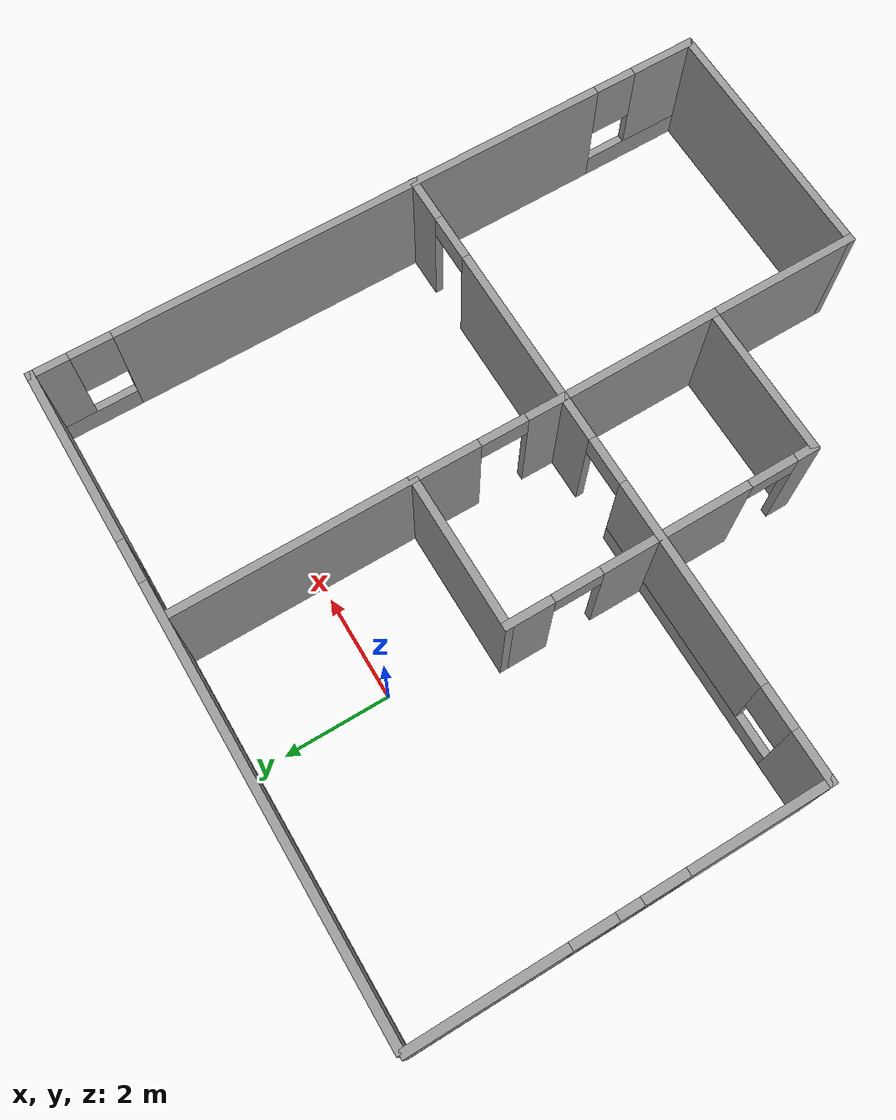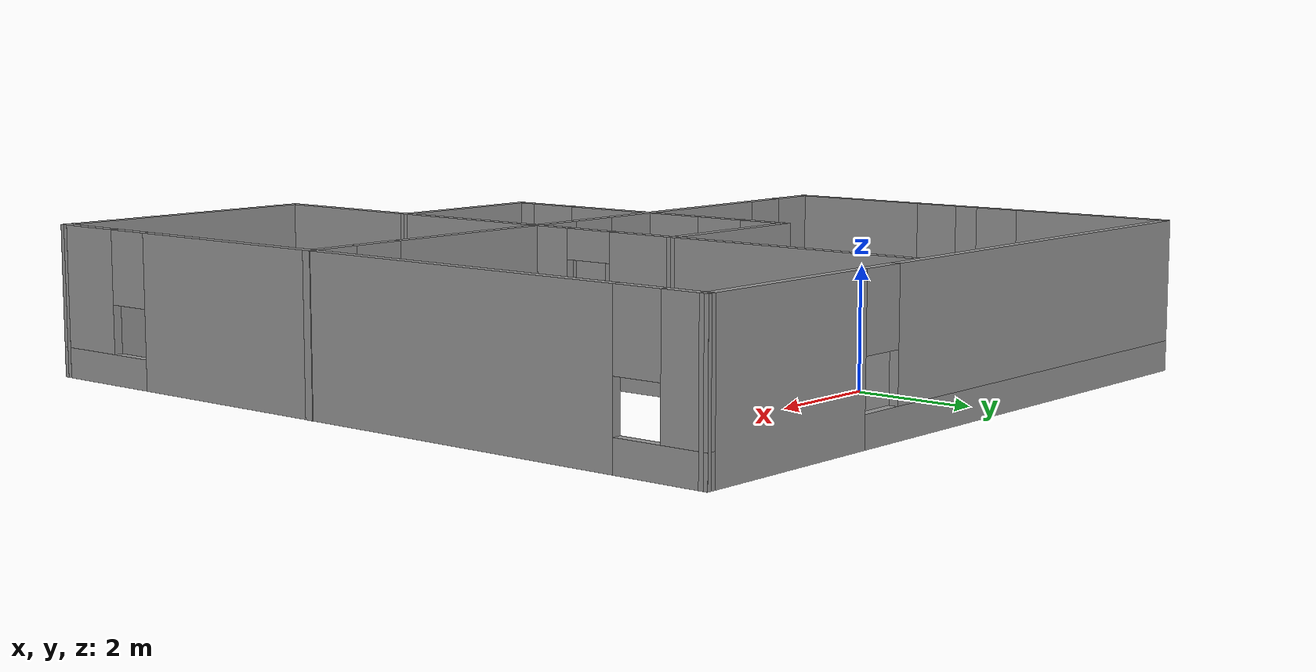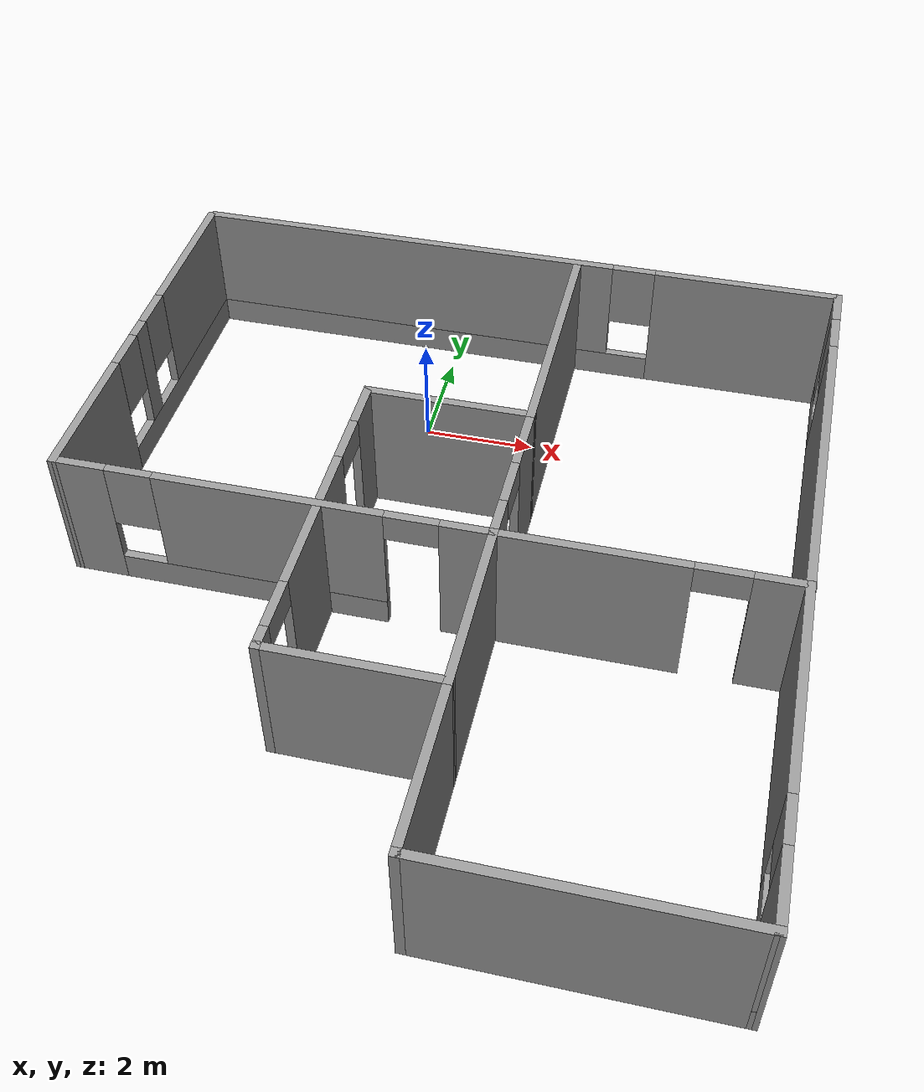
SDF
<?xml version='1.0'?>
<sdf version='1.6'>
  <model name='home'>
    <pose frame=''>1.06393 -4.00159 0 0 -0 0</pose>
    <link name='Wall_11'>
      <pose frame=''>-2.43351 -0.752008 0 0 -0 -0.000554</pose>
      <visual name='Wall_11_Visual_0'>
        <pose frame=''>-3.25375 0 1.25 0 -0 0</pose>
        <geometry>
          <box>
            <size>0.975464 0.15 2.5</size>
          </box>
        </geometry>
        <material>
          <script>
            <uri>file://media/materials/scripts/gazebo.material</uri>
            <name>Gazebo/Grey</name>
          </script>
          <ambient>1 1 1 1</ambient>
        </material>
        <meta>
          <layer>0</layer>
        </meta>
      </visual>
      <collision name='Wall_11_Collision_0'>
        <geometry>
          <box>
            <size>0.975464 0.15 2.5</size>
          </box>
        </geometry>
        <pose frame=''>-3.25375 0 1.25 0 -0 0</pose>
      </collision>
      <visual name='Wall_11_Visual_1'>
        <pose frame=''>3.27397 0 1.25 0 -0 0</pose>
        <geometry>
          <box>
            <size>0.935038 0.15 2.5</size>
          </box>
        </geometry>
        <material>
          <script>
            <uri>file://media/materials/scripts/gazebo.material</uri>
            <name>Gazebo/Grey</name>
          </script>
          <ambient>1 1 1 1</ambient>
        </material>
        <meta>
          <layer>0</layer>
        </meta>
      </visual>
      <collision name='Wall_11_Collision_1'>
        <geometry>
          <box>
            <size>0.935038 0.15 2.5</size>
          </box>
        </geometry>
        <pose frame=''>3.27397 0 1.25 0 -0 0</pose>
      </collision>
      <visual name='Wall_11_Visual_2'>
        <pose frame=''>-0.429787 0 0.25 0 -0 0</pose>
        <geometry>
          <box>
            <size>4.67247 0.15 0.5</size>
          </box>
        </geometry>
        <material>
          <script>
            <uri>file://media/materials/scripts/gazebo.material</uri>
            <name>Gazebo/Grey</name>
          </script>
          <ambient>1 1 1 1</ambient>
        </material>
        <meta>
          <layer>0</layer>
        </meta>
      </visual>
      <collision name='Wall_11_Collision_2'>
        <geometry>
          <box>
            <size>4.67247 0.15 0.5</size>
          </box>
        </geometry>
        <pose frame=''>-0.429787 0 0.25 0 -0 0</pose>
      </collision>
      <visual name='Wall_11_Visual_3'>
        <pose frame=''>-0.029787 0 1.5 0 -0 0</pose>
        <geometry>
          <box>
            <size>3.87247 0.15 2</size>
          </box>
        </geometry>
        <material>
          <script>
            <uri>file://media/materials/scripts/gazebo.material</uri>
            <name>Gazebo/Grey</name>
          </script>
          <ambient>1 1 1 1</ambient>
        </material>
        <meta>
          <layer>0</layer>
        </meta>
      </visual>
      <collision name='Wall_11_Collision_3'>
        <geometry>
          <box>
            <size>3.87247 0.15 2</size>
          </box>
        </geometry>
        <pose frame=''>-0.029787 0 1.5 0 -0 0</pose>
      </collision>
      <visual name='Wall_11_Visual_4'>
        <pose frame=''>-2.36602 0 1.9 0 -0 0</pose>
        <geometry>
          <box>
            <size>0.8 0.15 1.2</size>
          </box>
        </geometry>
        <material>
          <script>
            <uri>file://media/materials/scripts/gazebo.material</uri>
            <name>Gazebo/Grey</name>
          </script>
          <ambient>1 1 1 1</ambient>
        </material>
        <meta>
          <layer>0</layer>
        </meta>
      </visual>
      <collision name='Wall_11_Collision_4'>
        <geometry>
          <box>
            <size>0.8 0.15 1.2</size>
          </box>
        </geometry>
        <pose frame=''>-2.36602 0 1.9 0 -0 0</pose>
      </collision>
      <visual name='Wall_11_Visual_5'>
        <pose frame=''>2.35645 0 2.25 0 -0 0</pose>
        <geometry>
          <box>
            <size>0.9 0.15 0.5</size>
          </box>
        </geometry>
        <material>
          <script>
            <uri>file://media/materials/scripts/gazebo.material</uri>
            <name>Gazebo/Grey</name>
          </script>
          <ambient>1 1 1 1</ambient>
        </material>
        <meta>
          <layer>0</layer>
        </meta>
      </visual>
      <collision name='Wall_11_Collision_5'>
        <geometry>
          <box>
            <size>0.9 0.15 0.5</size>
          </box>
        </geometry>
        <pose frame=''>2.35645 0 2.25 0 -0 0</pose>
      </collision>
    </link>
    <link name='Wall_12'>
      <pose frame=''>1.24149 0.672992 0 0 -0 1.56483</pose>
      <visual name='Wall_12_Visual_0'>
        <pose frame=''>-1.10509 0 1.25 0 -0 0</pose>
        <geometry>
          <box>
            <size>0.793929 0.15 2.5</size>
          </box>
        </geometry>
        <material>
          <script>
            <uri>file://media/materials/scripts/gazebo.material</uri>
            <name>Gazebo/Grey</name>
          </script>
          <ambient>1 1 1 1</ambient>
        </material>
        <meta>
          <layer>0</layer>
        </meta>
      </visual>
      <collision name='Wall_12_Collision_0'>
        <geometry>
          <box>
            <size>0.793929 0.15 2.5</size>
          </box>
        </geometry>
        <pose frame=''>-1.10509 0 1.25 0 -0 0</pose>
      </collision>
      <visual name='Wall_12_Visual_1'>
        <pose frame=''>0.846965 0 1.25 0 -0 0</pose>
        <geometry>
          <box>
            <size>1.31018 0.15 2.5</size>
          </box>
        </geometry>
        <material>
          <script>
            <uri>file://media/materials/scripts/gazebo.material</uri>
            <name>Gazebo/Grey</name>
          </script>
          <ambient>1 1 1 1</ambient>
        </material>
        <meta>
          <layer>0</layer>
        </meta>
      </visual>
      <collision name='Wall_12_Collision_1'>
        <geometry>
          <box>
            <size>1.31018 0.15 2.5</size>
          </box>
        </geometry>
        <pose frame=''>0.846965 0 1.25 0 -0 0</pose>
      </collision>
      <visual name='Wall_12_Visual_2'>
        <pose frame=''>-0.258126 0 2.25 0 -0 0</pose>
        <geometry>
          <box>
            <size>0.9 0.15 0.5</size>
          </box>
        </geometry>
        <material>
          <script>
            <uri>file://media/materials/scripts/gazebo.material</uri>
            <name>Gazebo/Grey</name>
          </script>
          <ambient>1 1 1 1</ambient>
        </material>
        <meta>
          <layer>0</layer>
        </meta>
      </visual>
      <collision name='Wall_12_Collision_2'>
        <geometry>
          <box>
            <size>0.9 0.15 0.5</size>
          </box>
        </geometry>
        <pose frame=''>-0.258126 0 2.25 0 -0 0</pose>
      </collision>
    </link>
    <link name='Wall_13'>
      <collision name='Wall_13_Collision'>
        <geometry>
          <box>
            <size>3 0.15 2.5</size>
          </box>
        </geometry>
        <pose frame=''>0 0 1.25 0 -0 0</pose>
      </collision>
      <visual name='Wall_13_Visual'>
        <pose frame=''>0 0 1.25 0 -0 0</pose>
        <geometry>
          <box>
            <size>3 0.15 2.5</size>
          </box>
        </geometry>
        <material>
          <script>
            <uri>file://media/materials/scripts/gazebo.material</uri>
            <name>Gazebo/Grey</name>
          </script>
          <ambient>1 1 1 1</ambient>
        </material>
        <meta>
          <layer>0</layer>
        </meta>
      </visual>
      <pose frame=''>-0.174993 2.10002 0 0 -0 3.14159</pose>
    </link>
    <link name='Wall_14'>
      <pose frame=''>-1.59999 -0.824978 0 0 -0 -1.5708</pose>
      <visual name='Wall_14_Visual_0'>
        <pose frame=''>-2.54191 0 1.25 0 -0 0</pose>
        <geometry>
          <box>
            <size>0.916176 0.15 2.5</size>
          </box>
        </geometry>
        <material>
          <script>
            <uri>file://media/materials/scripts/gazebo.material</uri>
            <name>Gazebo/Grey</name>
          </script>
          <ambient>1 1 1 1</ambient>
        </material>
        <meta>
          <layer>0</layer>
        </meta>
      </visual>
      <collision name='Wall_14_Collision_0'>
        <geometry>
          <box>
            <size>0.916176 0.15 2.5</size>
          </box>
        </geometry>
        <pose frame=''>-2.54191 0 1.25 0 -0 0</pose>
      </collision>
      <visual name='Wall_14_Visual_1'>
        <pose frame=''>0.235123 0 1.25 0 -0 0</pose>
        <geometry>
          <box>
            <size>2.83789 0.15 2.5</size>
          </box>
        </geometry>
        <material>
          <script>
            <uri>file://media/materials/scripts/gazebo.material</uri>
            <name>Gazebo/Grey</name>
          </script>
          <ambient>1 1 1 1</ambient>
        </material>
        <meta>
          <layer>0</layer>
        </meta>
      </visual>
      <collision name='Wall_14_Collision_1'>
        <geometry>
          <box>
            <size>2.83789 0.15 2.5</size>
          </box>
        </geometry>
        <pose frame=''>0.235123 0 1.25 0 -0 0</pose>
      </collision>
      <visual name='Wall_14_Visual_2'>
        <pose frame=''>2.77704 0 1.25 0 -0 0</pose>
        <geometry>
          <box>
            <size>0.44593 0.15 2.5</size>
          </box>
        </geometry>
        <material>
          <script>
            <uri>file://media/materials/scripts/gazebo.material</uri>
            <name>Gazebo/Grey</name>
          </script>
          <ambient>1 1 1 1</ambient>
        </material>
        <meta>
          <layer>0</layer>
        </meta>
      </visual>
      <collision name='Wall_14_Collision_2'>
        <geometry>
          <box>
            <size>0.44593 0.15 2.5</size>
          </box>
        </geometry>
        <pose frame=''>2.77704 0 1.25 0 -0 0</pose>
      </collision>
      <visual name='Wall_14_Visual_3'>
        <pose frame=''>-1.63382 0 2.25 0 -0 0</pose>
        <geometry>
          <box>
            <size>0.9 0.15 0.5</size>
          </box>
        </geometry>
        <material>
          <script>
            <uri>file://media/materials/scripts/gazebo.material</uri>
            <name>Gazebo/Grey</name>
          </script>
          <ambient>1 1 1 1</ambient>
        </material>
        <meta>
          <layer>0</layer>
        </meta>
      </visual>
      <collision name='Wall_14_Collision_3'>
        <geometry>
          <box>
            <size>0.9 0.15 0.5</size>
          </box>
        </geometry>
        <pose frame=''>-1.63382 0 2.25 0 -0 0</pose>
      </collision>
      <visual name='Wall_14_Visual_4'>
        <pose frame=''>2.10407 0 2.25 0 -0 0</pose>
        <geometry>
          <box>
            <size>0.9 0.15 0.5</size>
          </box>
        </geometry>
        <material>
          <script>
            <uri>file://media/materials/scripts/gazebo.material</uri>
            <name>Gazebo/Grey</name>
          </script>
          <ambient>1 1 1 1</ambient>
        </material>
        <meta>
          <layer>0</layer>
        </meta>
      </visual>
      <collision name='Wall_14_Collision_4'>
        <geometry>
          <box>
            <size>0.9 0.15 0.5</size>
          </box>
        </geometry>
        <pose frame=''>2.10407 0 2.25 0 -0 0</pose>
      </collision>
    </link>
    <link name='Wall_15'>
      <collision name='Wall_15_Collision'>
        <geometry>
          <box>
            <size>3 0.15 2.5</size>
          </box>
        </geometry>
        <pose frame=''>0 0 1.25 0 -0 0</pose>
      </collision>
      <visual name='Wall_15_Visual'>
        <pose frame=''>0 0 1.25 0 -0 0</pose>
        <geometry>
          <box>
            <size>3 0.15 2.5</size>
          </box>
        </geometry>
        <material>
          <script>
            <uri>file://media/materials/scripts/gazebo.material</uri>
            <name>Gazebo/Grey</name>
          </script>
          <ambient>1 1 1 1</ambient>
        </material>
        <meta>
          <layer>0</layer>
        </meta>
      </visual>
      <pose frame=''>-0.174993 -3.74998 0 0 -0 0</pose>
    </link>
    <link name='Wall_16'>
      <collision name='Wall_16_Collision'>
        <geometry>
          <box>
            <size>3.14599 0.15 2.5</size>
          </box>
        </geometry>
        <pose frame=''>0 0 1.25 0 -0 0</pose>
      </collision>
      <visual name='Wall_16_Visual'>
        <pose frame=''>0 0 1.25 0 -0 0</pose>
        <geometry>
          <box>
            <size>3.14599 0.15 2.5</size>
          </box>
        </geometry>
        <material>
          <script>
            <uri>file://media/materials/scripts/gazebo.material</uri>
            <name>Gazebo/Grey</name>
          </script>
          <ambient>1 1 1 1</ambient>
        </material>
        <meta>
          <layer>0</layer>
        </meta>
      </visual>
      <pose frame=''>1.24149 -2.25201 0 0 -0 1.57648</pose>
    </link>
    <link name='Wall_17'>
      <pose frame=''>3.67095 -0.754038 0 0 -0 0</pose>
      <visual name='Wall_17_Visual_0'>
        <pose frame=''>-0.913368 0 1.25 0 -0 0</pose>
        <geometry>
          <box>
            <size>3.17326 0.15 2.5</size>
          </box>
        </geometry>
        <material>
          <script>
            <uri>file://media/materials/scripts/gazebo.material</uri>
            <name>Gazebo/Grey</name>
          </script>
          <ambient>1 1 1 1</ambient>
        </material>
        <meta>
          <layer>0</layer>
        </meta>
      </visual>
      <collision name='Wall_17_Collision_0'>
        <geometry>
          <box>
            <size>3.17326 0.15 2.5</size>
          </box>
        </geometry>
        <pose frame=''>-0.913368 0 1.25 0 -0 0</pose>
      </collision>
      <visual name='Wall_17_Visual_1'>
        <pose frame=''>2.03663 0 1.25 0 -0 0</pose>
        <geometry>
          <box>
            <size>0.926735 0.15 2.5</size>
          </box>
        </geometry>
        <material>
          <script>
            <uri>file://media/materials/scripts/gazebo.material</uri>
            <name>Gazebo/Grey</name>
          </script>
          <ambient>1 1 1 1</ambient>
        </material>
        <meta>
          <layer>0</layer>
        </meta>
      </visual>
      <collision name='Wall_17_Collision_1'>
        <geometry>
          <box>
            <size>0.926735 0.15 2.5</size>
          </box>
        </geometry>
        <pose frame=''>2.03663 0 1.25 0 -0 0</pose>
      </collision>
      <visual name='Wall_17_Visual_2'>
        <pose frame=''>1.12326 0 2.25 0 -0 0</pose>
        <geometry>
          <box>
            <size>0.9 0.15 0.5</size>
          </box>
        </geometry>
        <material>
          <script>
            <uri>file://media/materials/scripts/gazebo.material</uri>
            <name>Gazebo/Grey</name>
          </script>
          <ambient>1 1 1 1</ambient>
        </material>
        <meta>
          <layer>0</layer>
        </meta>
      </visual>
      <collision name='Wall_17_Collision_2'>
        <geometry>
          <box>
            <size>0.9 0.15 0.5</size>
          </box>
        </geometry>
        <pose frame=''>1.12326 0 2.25 0 -0 0</pose>
      </collision>
    </link>
    <link name='Wall_18'>
      <pose frame=''>6.09149 2.92299 0 0 -0 1.56848</pose>
      <visual name='Wall_18_Visual_0'>
        <pose frame=''>-0.782712 0 1.25 0 -0 0</pose>
        <geometry>
          <box>
            <size>5.93866 0.15 2.5</size>
          </box>
        </geometry>
        <material>
          <script>
            <uri>file://media/materials/scripts/gazebo.material</uri>
            <name>Gazebo/Grey</name>
          </script>
          <ambient>1 1 1 1</ambient>
        </material>
        <meta>
          <layer>0</layer>
        </meta>
      </visual>
      <collision name='Wall_18_Collision_0'>
        <geometry>
          <box>
            <size>5.93866 0.15 2.5</size>
          </box>
        </geometry>
        <pose frame=''>-0.782712 0 1.25 0 -0 0</pose>
      </collision>
      <visual name='Wall_18_Visual_1'>
        <pose frame=''>2.96933 0 0.25 0 -0 0</pose>
        <geometry>
          <box>
            <size>1.56542 0.15 0.5</size>
          </box>
        </geometry>
        <material>
          <script>
            <uri>file://media/materials/scripts/gazebo.material</uri>
            <name>Gazebo/Grey</name>
          </script>
          <ambient>1 1 1 1</ambient>
        </material>
        <meta>
          <layer>0</layer>
        </meta>
      </visual>
      <collision name='Wall_18_Collision_1'>
        <geometry>
          <box>
            <size>1.56542 0.15 0.5</size>
          </box>
        </geometry>
        <pose frame=''>2.96933 0 0.25 0 -0 0</pose>
      </collision>
      <visual name='Wall_18_Visual_2'>
        <pose frame=''>3.36933 0 1.5 0 -0 0</pose>
        <geometry>
          <box>
            <size>0.765424 0.15 2</size>
          </box>
        </geometry>
        <material>
          <script>
            <uri>file://media/materials/scripts/gazebo.material</uri>
            <name>Gazebo/Grey</name>
          </script>
          <ambient>1 1 1 1</ambient>
        </material>
        <meta>
          <layer>0</layer>
        </meta>
      </visual>
      <collision name='Wall_18_Collision_2'>
        <geometry>
          <box>
            <size>0.765424 0.15 2</size>
          </box>
        </geometry>
        <pose frame=''>3.36933 0 1.5 0 -0 0</pose>
      </collision>
      <visual name='Wall_18_Visual_3'>
        <pose frame=''>2.58662 0 1.9 0 -0 0</pose>
        <geometry>
          <box>
            <size>0.8 0.15 1.2</size>
          </box>
        </geometry>
        <material>
          <script>
            <uri>file://media/materials/scripts/gazebo.material</uri>
            <name>Gazebo/Grey</name>
          </script>
          <ambient>1 1 1 1</ambient>
        </material>
        <meta>
          <layer>0</layer>
        </meta>
      </visual>
      <collision name='Wall_18_Collision_3'>
        <geometry>
          <box>
            <size>0.8 0.15 1.2</size>
          </box>
        </geometry>
        <pose frame=''>2.58662 0 1.9 0 -0 0</pose>
      </collision>
    </link>
    <link name='Wall_19'>
      <pose frame=''>0.050007 6.60002 0 0 -0 3.14159</pose>
      <visual name='Wall_19_Visual_0'>
        <pose frame=''>-4.39916 0 1.25 0 -0 0</pose>
        <geometry>
          <box>
            <size>3.45169 0.15 2.5</size>
          </box>
        </geometry>
        <material>
          <script>
            <uri>file://media/materials/scripts/gazebo.material</uri>
            <name>Gazebo/Grey</name>
          </script>
          <ambient>1 1 1 1</ambient>
        </material>
        <meta>
          <layer>0</layer>
        </meta>
      </visual>
      <collision name='Wall_19_Collision_0'>
        <geometry>
          <box>
            <size>3.45169 0.15 2.5</size>
          </box>
        </geometry>
        <pose frame=''>-4.39916 0 1.25 0 -0 0</pose>
      </collision>
      <visual name='Wall_19_Visual_1'>
        <pose frame=''>1.72584 0 0.25 0 -0 0</pose>
        <geometry>
          <box>
            <size>8.79831 0.15 0.5</size>
          </box>
        </geometry>
        <material>
          <script>
            <uri>file://media/materials/scripts/gazebo.material</uri>
            <name>Gazebo/Grey</name>
          </script>
          <ambient>1 1 1 1</ambient>
        </material>
        <meta>
          <layer>0</layer>
        </meta>
      </visual>
      <collision name='Wall_19_Collision_1'>
        <geometry>
          <box>
            <size>8.79831 0.15 0.5</size>
          </box>
        </geometry>
        <pose frame=''>1.72584 0 0.25 0 -0 0</pose>
      </collision>
      <visual name='Wall_19_Visual_2'>
        <pose frame=''>2.12584 0 1.5 0 -0 0</pose>
        <geometry>
          <box>
            <size>7.99831 0.15 2</size>
          </box>
        </geometry>
        <material>
          <script>
            <uri>file://media/materials/scripts/gazebo.material</uri>
            <name>Gazebo/Grey</name>
          </script>
          <ambient>1 1 1 1</ambient>
        </material>
        <meta>
          <layer>0</layer>
        </meta>
      </visual>
      <collision name='Wall_19_Collision_2'>
        <geometry>
          <box>
            <size>7.99831 0.15 2</size>
          </box>
        </geometry>
        <pose frame=''>2.12584 0 1.5 0 -0 0</pose>
      </collision>
      <visual name='Wall_19_Visual_3'>
        <pose frame=''>-2.27331 0 1.9 0 -0 0</pose>
        <geometry>
          <box>
            <size>0.8 0.15 1.2</size>
          </box>
        </geometry>
        <material>
          <script>
            <uri>file://media/materials/scripts/gazebo.material</uri>
            <name>Gazebo/Grey</name>
          </script>
          <ambient>1 1 1 1</ambient>
        </material>
        <meta>
          <layer>0</layer>
        </meta>
      </visual>
      <collision name='Wall_19_Collision_3'>
        <geometry>
          <box>
            <size>0.8 0.15 1.2</size>
          </box>
        </geometry>
        <pose frame=''>-2.27331 0 1.9 0 -0 0</pose>
      </collision>
    </link>
    <link name='Wall_21'>
      <pose frame=''>6.09149 -3.67701 0 0 -0 -1.56788</pose>
      <visual name='Wall_21_Visual_0'>
        <pose frame=''>-1.05804 0 1.25 0 -0 0</pose>
        <geometry>
          <box>
            <size>3.87989 0.15 2.5</size>
          </box>
        </geometry>
        <material>
          <script>
            <uri>file://media/materials/scripts/gazebo.material</uri>
            <name>Gazebo/Grey</name>
          </script>
          <ambient>1 1 1 1</ambient>
        </material>
        <meta>
          <layer>0</layer>
        </meta>
      </visual>
      <collision name='Wall_21_Collision_0'>
        <geometry>
          <box>
            <size>3.87989 0.15 2.5</size>
          </box>
        </geometry>
        <pose frame=''>-1.05804 0 1.25 0 -0 0</pose>
      </collision>
      <visual name='Wall_21_Visual_1'>
        <pose frame=''>1.93994 0 0.25 0 -0 0</pose>
        <geometry>
          <box>
            <size>2.11608 0.15 0.5</size>
          </box>
        </geometry>
        <material>
          <script>
            <uri>file://media/materials/scripts/gazebo.material</uri>
            <name>Gazebo/Grey</name>
          </script>
          <ambient>1 1 1 1</ambient>
        </material>
        <meta>
          <layer>0</layer>
        </meta>
      </visual>
      <collision name='Wall_21_Collision_1'>
        <geometry>
          <box>
            <size>2.11608 0.15 0.5</size>
          </box>
        </geometry>
        <pose frame=''>1.93994 0 0.25 0 -0 0</pose>
      </collision>
      <visual name='Wall_21_Visual_2'>
        <pose frame=''>2.33994 0 1.5 0 -0 0</pose>
        <geometry>
          <box>
            <size>1.31608 0.15 2</size>
          </box>
        </geometry>
        <material>
          <script>
            <uri>file://media/materials/scripts/gazebo.material</uri>
            <name>Gazebo/Grey</name>
          </script>
          <ambient>1 1 1 1</ambient>
        </material>
        <meta>
          <layer>0</layer>
        </meta>
      </visual>
      <collision name='Wall_21_Collision_2'>
        <geometry>
          <box>
            <size>1.31608 0.15 2</size>
          </box>
        </geometry>
        <pose frame=''>2.33994 0 1.5 0 -0 0</pose>
      </collision>
      <visual name='Wall_21_Visual_3'>
        <pose frame=''>1.28191 0 1.9 0 -0 0</pose>
        <geometry>
          <box>
            <size>0.8 0.15 1.2</size>
          </box>
        </geometry>
        <material>
          <script>
            <uri>file://media/materials/scripts/gazebo.material</uri>
            <name>Gazebo/Grey</name>
          </script>
          <ambient>1 1 1 1</ambient>
        </material>
        <meta>
          <layer>0</layer>
        </meta>
      </visual>
      <collision name='Wall_21_Collision_3'>
        <geometry>
          <box>
            <size>0.8 0.15 1.2</size>
          </box>
        </geometry>
        <pose frame=''>1.28191 0 1.9 0 -0 0</pose>
      </collision>
    </link>
    <link name='Wall_22'>
      <collision name='Wall_22_Collision'>
        <geometry>
          <box>
            <size>5 0.15 2.5</size>
          </box>
        </geometry>
        <pose frame=''>0 0 1.25 0 -0 0</pose>
      </collision>
      <visual name='Wall_22_Visual'>
        <pose frame=''>0 0 1.25 0 -0 0</pose>
        <geometry>
          <box>
            <size>5 0.15 2.5</size>
          </box>
        </geometry>
        <material>
          <script>
            <uri>file://media/materials/scripts/gazebo.material</uri>
            <name>Gazebo/Grey</name>
          </script>
          <ambient>1 1 1 1</ambient>
        </material>
        <meta>
          <layer>0</layer>
        </meta>
      </visual>
      <pose frame=''>3.67501 -6.59998 0 0 -0 3.14159</pose>
    </link>
    <link name='Wall_23'>
      <collision name='Wall_23_Collision'>
        <geometry>
          <box>
            <size>3 0.15 2.5</size>
          </box>
        </geometry>
        <pose frame=''>0 0 1.25 0 -0 0</pose>
      </collision>
      <visual name='Wall_23_Visual'>
        <pose frame=''>0 0 1.25 0 -0 0</pose>
        <geometry>
          <box>
            <size>3 0.15 2.5</size>
          </box>
        </geometry>
        <material>
          <script>
            <uri>file://media/materials/scripts/gazebo.material</uri>
            <name>Gazebo/Grey</name>
          </script>
          <ambient>1 1 1 1</ambient>
        </material>
        <meta>
          <layer>0</layer>
        </meta>
      </visual>
      <pose frame=''>1.25001 -5.17498 0 0 -0 1.5708</pose>
    </link>
    <link name='Wall_25'>
      <collision name='Wall_25_Collision'>
        <geometry>
          <box>
            <size>4.5 0.15 2.5</size>
          </box>
        </geometry>
        <pose frame=''>0 0 1.25 0 -0 0</pose>
      </collision>
      <visual name='Wall_25_Visual'>
        <pose frame=''>0 0 1.25 0 -0 0</pose>
        <geometry>
          <box>
            <size>4.5 0.15 2.5</size>
          </box>
        </geometry>
        <material>
          <script>
            <uri>file://media/materials/scripts/gazebo.material</uri>
            <name>Gazebo/Grey</name>
          </script>
          <ambient>1 1 1 1</ambient>
        </material>
        <meta>
          <layer>0</layer>
        </meta>
      </visual>
      <pose frame=''>1.25001 4.27502 0 0 -0 1.5708</pose>
    </link>
    <link name='Wall_6'>
      <pose frame=''>-6.08871 2.90247 0 0 -0 1.56771</pose>
      <visual name='Wall_6_Visual_0'>
        <pose frame=''>-2.41602 0 1.25 0 -0 0</pose>
        <geometry>
          <box>
            <size>2.62287 0.15 2.5</size>
          </box>
        </geometry>
        <material>
          <script>
            <uri>file://media/materials/scripts/gazebo.material</uri>
            <name>Gazebo/Grey</name>
          </script>
          <ambient>1 1 1 1</ambient>
        </material>
        <meta>
          <layer>0</layer>
        </meta>
      </visual>
      <collision name='Wall_6_Collision_0'>
        <geometry>
          <box>
            <size>2.62287 0.15 2.5</size>
          </box>
        </geometry>
        <pose frame=''>-2.41602 0 1.25 0 -0 0</pose>
      </collision>
      <visual name='Wall_6_Visual_1'>
        <pose frame=''>1.31144 0 0.25 0 -0 0</pose>
        <geometry>
          <box>
            <size>4.83205 0.15 0.5</size>
          </box>
        </geometry>
        <material>
          <script>
            <uri>file://media/materials/scripts/gazebo.material</uri>
            <name>Gazebo/Grey</name>
          </script>
          <ambient>1 1 1 1</ambient>
        </material>
        <meta>
          <layer>0</layer>
        </meta>
      </visual>
      <collision name='Wall_6_Collision_1'>
        <geometry>
          <box>
            <size>4.83205 0.15 0.5</size>
          </box>
        </geometry>
        <pose frame=''>1.31144 0 0.25 0 -0 0</pose>
      </collision>
      <visual name='Wall_6_Visual_2'>
        <pose frame=''>-0.092044 0 1.5 0 -0 0</pose>
        <geometry>
          <box>
            <size>0.425087 0.15 2</size>
          </box>
        </geometry>
        <material>
          <script>
            <uri>file://media/materials/scripts/gazebo.material</uri>
            <name>Gazebo/Grey</name>
          </script>
          <ambient>1 1 1 1</ambient>
        </material>
        <meta>
          <layer>0</layer>
        </meta>
      </visual>
      <collision name='Wall_6_Collision_2'>
        <geometry>
          <box>
            <size>0.425087 0.15 2</size>
          </box>
        </geometry>
        <pose frame=''>-0.092044 0 1.5 0 -0 0</pose>
      </collision>
      <visual name='Wall_6_Visual_3'>
        <pose frame=''>2.32398 0 1.5 0 -0 0</pose>
        <geometry>
          <box>
            <size>2.80696 0.15 2</size>
          </box>
        </geometry>
        <material>
          <script>
            <uri>file://media/materials/scripts/gazebo.material</uri>
            <name>Gazebo/Grey</name>
          </script>
          <ambient>1 1 1 1</ambient>
        </material>
        <meta>
          <layer>0</layer>
        </meta>
      </visual>
      <collision name='Wall_6_Collision_3'>
        <geometry>
          <box>
            <size>2.80696 0.15 2</size>
          </box>
        </geometry>
        <pose frame=''>2.32398 0 1.5 0 -0 0</pose>
      </collision>
      <visual name='Wall_6_Visual_4'>
        <pose frame=''>-0.704588 0 1.9 0 -0 0</pose>
        <geometry>
          <box>
            <size>0.8 0.15 1.2</size>
          </box>
        </geometry>
        <material>
          <script>
            <uri>file://media/materials/scripts/gazebo.material</uri>
            <name>Gazebo/Grey</name>
          </script>
          <ambient>1 1 1 1</ambient>
        </material>
        <meta>
          <layer>0</layer>
        </meta>
      </visual>
      <collision name='Wall_6_Collision_4'>
        <geometry>
          <box>
            <size>0.8 0.15 1.2</size>
          </box>
        </geometry>
        <pose frame=''>-0.704588 0 1.9 0 -0 0</pose>
      </collision>
      <visual name='Wall_6_Visual_5'>
        <pose frame=''>0.520499 0 1.9 0 -0 0</pose>
        <geometry>
          <box>
            <size>0.8 0.15 1.2</size>
          </box>
        </geometry>
        <material>
          <script>
            <uri>file://media/materials/scripts/gazebo.material</uri>
            <name>Gazebo/Grey</name>
          </script>
          <ambient>1 1 1 1</ambient>
        </material>
        <meta>
          <layer>0</layer>
        </meta>
      </visual>
      <collision name='Wall_6_Collision_5'>
        <geometry>
          <box>
            <size>0.8 0.15 1.2</size>
          </box>
        </geometry>
        <pose frame=''>0.520499 0 1.9 0 -0 0</pose>
      </collision>
    </link>
    <static>1</static>
  </model>
</sdf>
